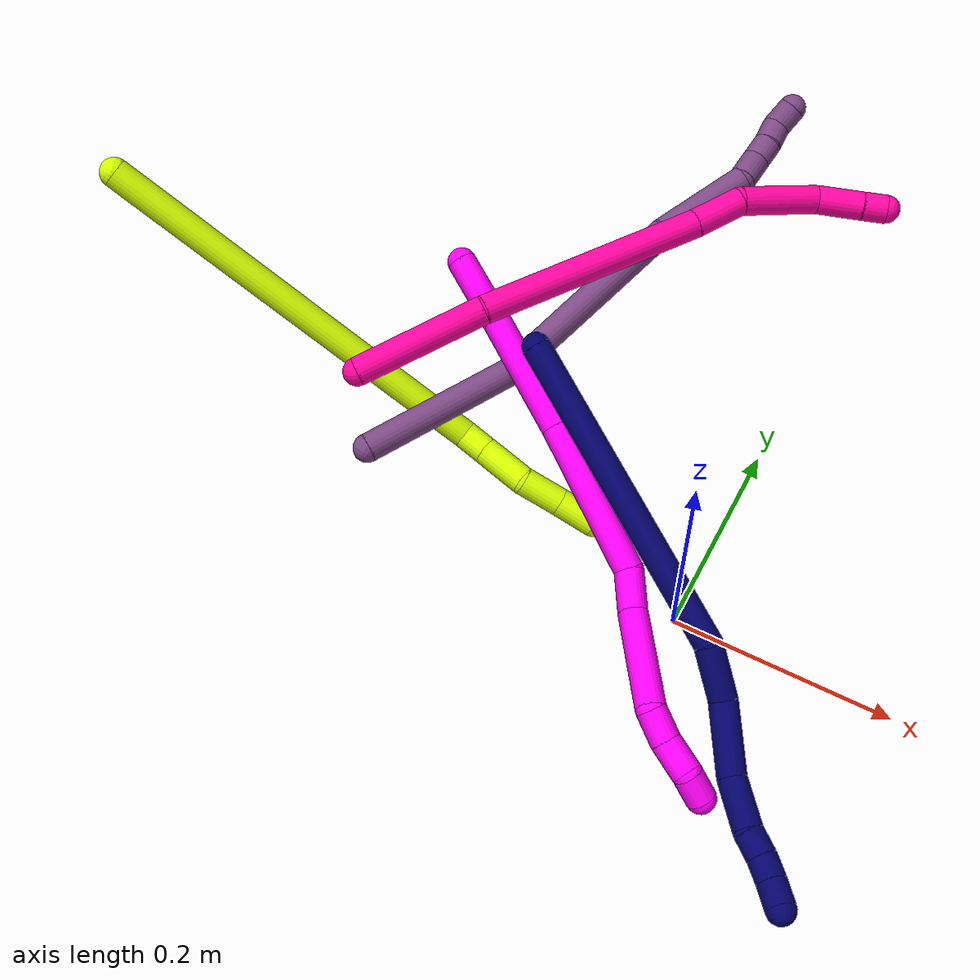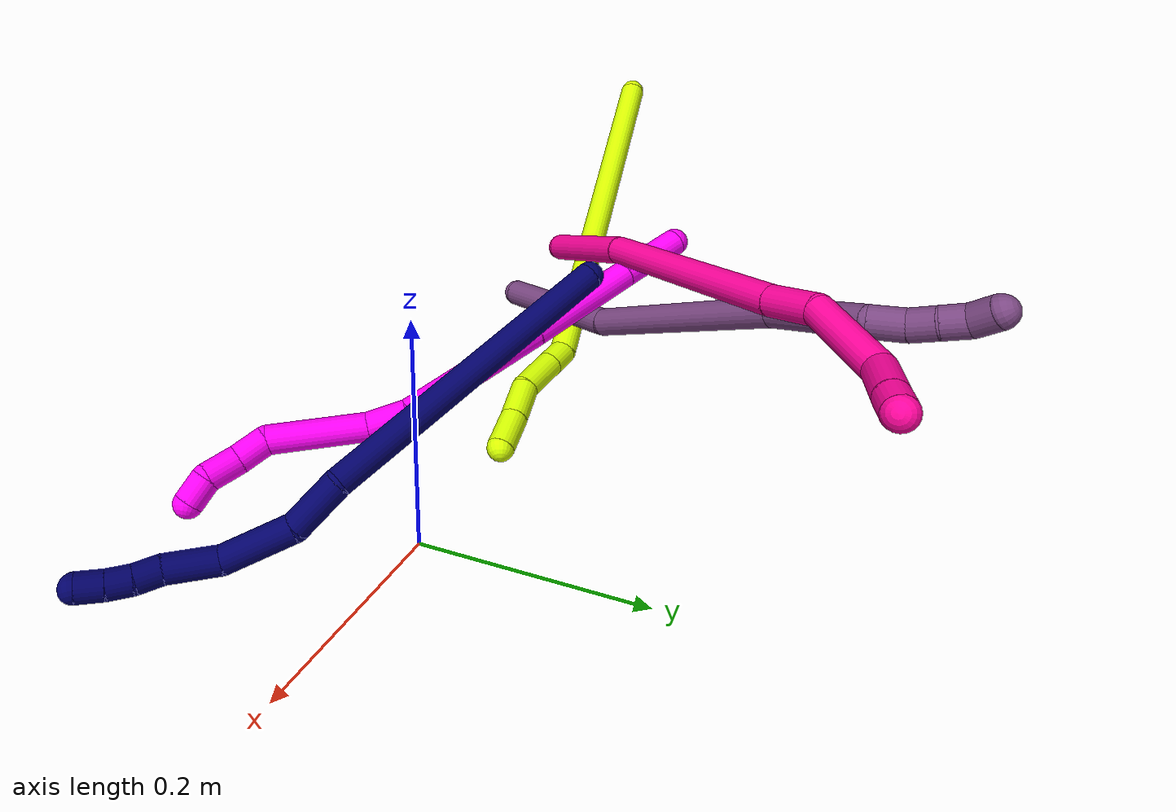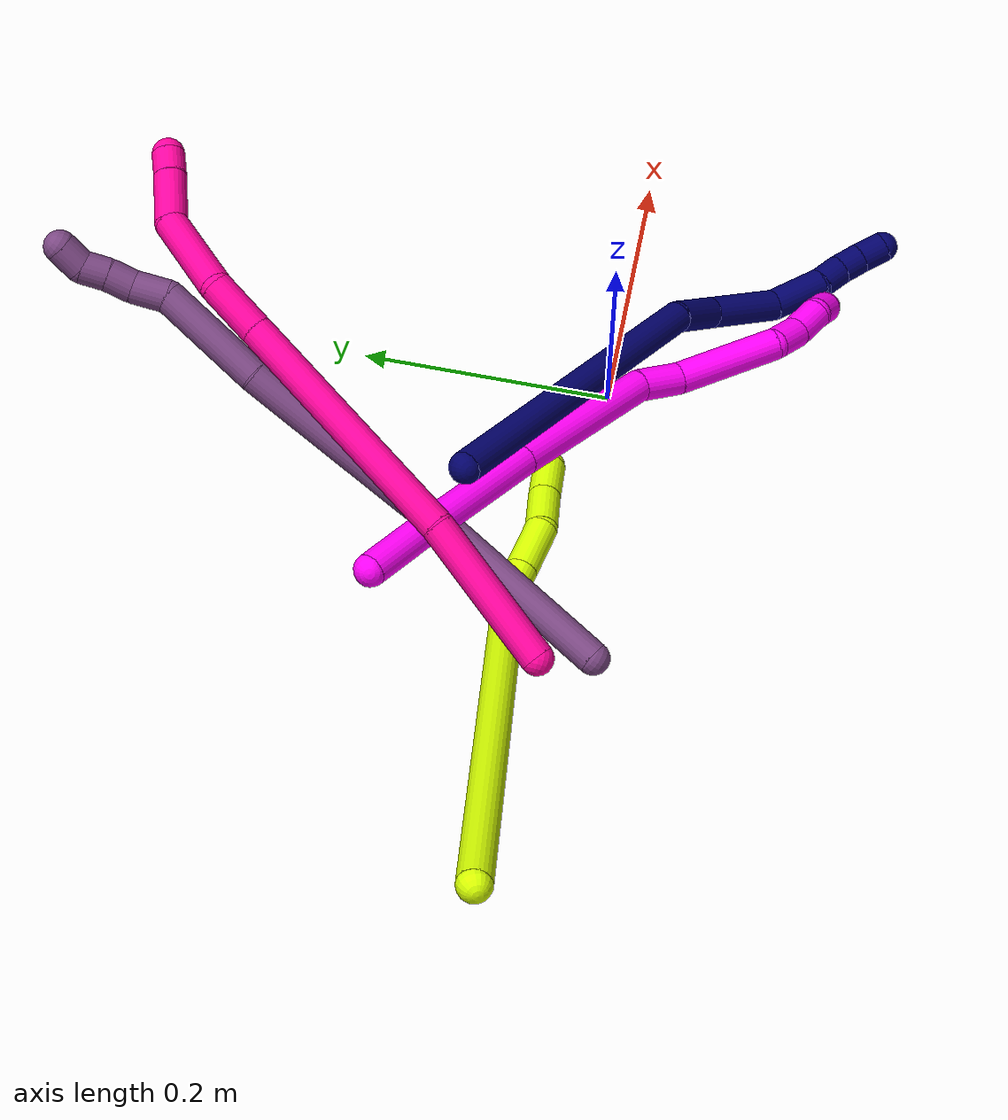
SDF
<sdf version="1.7">
 <world name="default">
  <model name="7">
   <static>0</static>
   <link name="7">
    <collision name="collision-cylinder-e_1_1_4">
     <pose>0.01287 -0.118824 0.073561 1.01647 0.091831 0.051178</pose>
     <geometry><cylinder><radius>0.0125</radius><length>0.280685</length></cylinder></geometry>
     <surface>
      <friction><ode><mu>1.16</mu><mu2>1.16</mu2><slip1>0</slip1><slip2>0</slip2></ode></friction>
      <contact><ode><kp>1e+06</kp><kd>1</kd><max_vel>0</max_vel><min_depth>0.001</min_depth></ode></contact>
     </surface>
    </collision>
    <visual name="visual-cylinder-e_1_1_4">
     <pose>0.01287 -0.118824 0.073561 1.01647 0.091831 0.051178</pose>
     <geometry><cylinder><radius>0.0125</radius><length>0.280685</length></cylinder></geometry>
     <material><ambient>0.003922 0 0.403922 1</ambient></material>
    </visual>
    <collision name="collision-cylinder-e_2_4_5">
     <pose>0.035381 -0.25542 0.160101 0.94003 0.412936 0.212</pose>
     <geometry><cylinder><radius>0.0125</radius><length>0.048052</length></cylinder></geometry>
     <surface>
      <friction><ode><mu>1.16</mu><mu2>1.16</mu2><slip1>0</slip1><slip2>0</slip2></ode></friction>
      <contact><ode><kp>1e+06</kp><kd>1</kd><max_vel>0</max_vel><min_depth>0.001</min_depth></ode></contact>
     </surface>
    </collision>
    <visual name="visual-cylinder-e_2_4_5">
     <pose>0.035381 -0.25542 0.160101 0.94003 0.412936 0.212</pose>
     <geometry><cylinder><radius>0.0125</radius><length>0.048052</length></cylinder></geometry>
     <material><ambient>0.003922 0 0.403922 1</ambient></material>
    </visual>
    <collision name="collision-cylinder-e_3_5_6">
     <pose>0.056915 -0.301586 0.179109 1.36157 0.388843 0.316312</pose>
     <geometry><cylinder><radius>0.0125</radius><length>0.062738</length></cylinder></geometry>
     <surface>
      <friction><ode><mu>1.16</mu><mu2>1.16</mu2><slip1>0</slip1><slip2>0</slip2></ode></friction>
      <contact><ode><kp>1e+06</kp><kd>1</kd><max_vel>0</max_vel><min_depth>0.001</min_depth></ode></contact>
     </surface>
    </collision>
    <visual name="visual-cylinder-e_3_5_6">
     <pose>0.056915 -0.301586 0.179109 1.36157 0.388843 0.316312</pose>
     <geometry><cylinder><radius>0.0125</radius><length>0.062738</length></cylinder></geometry>
     <material><ambient>0.003922 0 0.403922 1</ambient></material>
    </visual>
    <collision name="collision-cylinder-e_4_6_7">
     <pose>0.069846 -0.352384 0.185034 1.57545 0.046318 0.046534</pose>
     <geometry><cylinder><radius>0.0125</radius><length>0.044856</length></cylinder></geometry>
     <surface>
      <friction><ode><mu>1.16</mu><mu2>1.16</mu2><slip1>0</slip1><slip2>0</slip2></ode></friction>
      <contact><ode><kp>1e+06</kp><kd>1</kd><max_vel>0</max_vel><min_depth>0.001</min_depth></ode></contact>
     </surface>
    </collision>
    <visual name="visual-cylinder-e_4_6_7">
     <pose>0.069846 -0.352384 0.185034 1.57545 0.046318 0.046534</pose>
     <geometry><cylinder><radius>0.0125</radius><length>0.044856</length></cylinder></geometry>
     <material><ambient>0.003922 0 0.403922 1</ambient></material>
    </visual>
    <collision name="collision-cylinder-e_5_7_8">
     <pose>0.070349 -0.385322 0.187225 1.35625 -0.049693 -0.040034</pose>
     <geometry><cylinder><radius>0.0125</radius><length>0.021589</length></cylinder></geometry>
     <surface>
      <friction><ode><mu>1.16</mu><mu2>1.16</mu2><slip1>0</slip1><slip2>0</slip2></ode></friction>
      <contact><ode><kp>1e+06</kp><kd>1</kd><max_vel>0</max_vel><min_depth>0.001</min_depth></ode></contact>
     </surface>
    </collision>
    <visual name="visual-cylinder-e_5_7_8">
     <pose>0.070349 -0.385322 0.187225 1.35625 -0.049693 -0.040034</pose>
     <geometry><cylinder><radius>0.0125</radius><length>0.021589</length></cylinder></geometry>
     <material><ambient>0.003922 0 0.403922 1</ambient></material>
    </visual>
    <collision name="collision-cylinder-e_6_8_9">
     <pose>0.069679 -0.40592 0.189979 1.52524 -0.01323 -0.012641</pose>
     <geometry><cylinder><radius>0.0125</radius><length>0.020151</length></cylinder></geometry>
     <surface>
      <friction><ode><mu>1.16</mu><mu2>1.16</mu2><slip1>0</slip1><slip2>0</slip2></ode></friction>
      <contact><ode><kp>1e+06</kp><kd>1</kd><max_vel>0</max_vel><min_depth>0.001</min_depth></ode></contact>
     </surface>
    </collision>
    <visual name="visual-cylinder-e_6_8_9">
     <pose>0.069679 -0.40592 0.189979 1.52524 -0.01323 -0.012641</pose>
     <geometry><cylinder><radius>0.0125</radius><length>0.020151</length></cylinder></geometry>
     <material><ambient>0.003922 0 0.403922 1</ambient></material>
    </visual>
    <collision name="collision-cylinder-e_7_9_2">
     <pose>0.069451 -0.42693 0.189807 1.62842 -0.008611 -0.009123</pose>
     <geometry><cylinder><radius>0.0125</radius><length>0.021929</length></cylinder></geometry>
     <surface>
      <friction><ode><mu>1.16</mu><mu2>1.16</mu2><slip1>0</slip1><slip2>0</slip2></ode></friction>
      <contact><ode><kp>1e+06</kp><kd>1</kd><max_vel>0</max_vel><min_depth>0.001</min_depth></ode></contact>
     </surface>
    </collision>
    <visual name="visual-cylinder-e_7_9_2">
     <pose>0.069451 -0.42693 0.189807 1.62842 -0.008611 -0.009123</pose>
     <geometry><cylinder><radius>0.0125</radius><length>0.021929</length></cylinder></geometry>
     <material><ambient>0.003922 0 0.403922 1</ambient></material>
    </visual>
    <collision name="collision-sphere-2">
     <pose>0.069357 -0.437876 0.189175 0 -0 0</pose>
     <geometry><sphere><radius>0.0125</radius></sphere></geometry>
     <surface>
      <friction><ode><mu>1.16</mu><mu2>1.16</mu2><slip1>0</slip1><slip2>0</slip2></ode></friction>
      <contact><ode><kp>1e+06</kp><kd>1</kd><max_vel>0</max_vel><min_depth>0.001</min_depth></ode></contact>
     </surface>
    </collision>
    <visual name="visual-sphere-2">
     <pose>0.069357 -0.437876 0.189175 0 -0 0</pose>
     <geometry><sphere><radius>0.0125</radius></sphere></geometry>
     <material><ambient>0.003922 0 0.403922 1</ambient></material>
    </visual>
    <collision name="collision-sphere-9">
     <pose>0.069546 -0.415984 0.190438 0 -0 0</pose>
     <geometry><sphere><radius>0.0125</radius></sphere></geometry>
     <surface>
      <friction><ode><mu>1.16</mu><mu2>1.16</mu2><slip1>0</slip1><slip2>0</slip2></ode></friction>
      <contact><ode><kp>1e+06</kp><kd>1</kd><max_vel>0</max_vel><min_depth>0.001</min_depth></ode></contact>
     </surface>
    </collision>
    <visual name="visual-sphere-9">
     <pose>0.069546 -0.415984 0.190438 0 -0 0</pose>
     <geometry><sphere><radius>0.0125</radius></sphere></geometry>
     <material><ambient>0.003922 0 0.403922 1</ambient></material>
    </visual>
    <collision name="collision-sphere-4">
     <pose>0.025739 -0.237648 0.147123 0 -0 0</pose>
     <geometry><sphere><radius>0.0125</radius></sphere></geometry>
     <surface>
      <friction><ode><mu>1.16</mu><mu2>1.16</mu2><slip1>0</slip1><slip2>0</slip2></ode></friction>
      <contact><ode><kp>1e+06</kp><kd>1</kd><max_vel>0</max_vel><min_depth>0.001</min_depth></ode></contact>
     </surface>
    </collision>
    <visual name="visual-sphere-4">
     <pose>0.025739 -0.237648 0.147123 0 -0 0</pose>
     <geometry><sphere><radius>0.0125</radius></sphere></geometry>
     <material><ambient>0.003922 0 0.403922 1</ambient></material>
    </visual>
    <collision name="collision-sphere-1">
     <geometry><sphere><radius>0.0125</radius></sphere></geometry>
     <surface>
      <friction><ode><mu>1.16</mu><mu2>1.16</mu2><slip1>0</slip1><slip2>0</slip2></ode></friction>
      <contact><ode><kp>1e+06</kp><kd>1</kd><max_vel>0</max_vel><min_depth>0.001</min_depth></ode></contact>
     </surface>
    </collision>
    <visual name="visual-sphere-1">
     <geometry><sphere><radius>0.0125</radius></sphere></geometry>
     <material><ambient>0.003922 0 0.403922 1</ambient></material>
    </visual>
    <collision name="collision-sphere-8">
     <pose>0.069812 -0.395856 0.18952 0 -0 0</pose>
     <geometry><sphere><radius>0.0125</radius></sphere></geometry>
     <surface>
      <friction><ode><mu>1.16</mu><mu2>1.16</mu2><slip1>0</slip1><slip2>0</slip2></ode></friction>
      <contact><ode><kp>1e+06</kp><kd>1</kd><max_vel>0</max_vel><min_depth>0.001</min_depth></ode></contact>
     </surface>
    </collision>
    <visual name="visual-sphere-8">
     <pose>0.069812 -0.395856 0.18952 0 -0 0</pose>
     <geometry><sphere><radius>0.0125</radius></sphere></geometry>
     <material><ambient>0.003922 0 0.403922 1</ambient></material>
    </visual>
    <collision name="collision-sphere-5">
     <pose>0.045023 -0.273192 0.17308 0 -0 0</pose>
     <geometry><sphere><radius>0.0125</radius></sphere></geometry>
     <surface>
      <friction><ode><mu>1.16</mu><mu2>1.16</mu2><slip1>0</slip1><slip2>0</slip2></ode></friction>
      <contact><ode><kp>1e+06</kp><kd>1</kd><max_vel>0</max_vel><min_depth>0.001</min_depth></ode></contact>
     </surface>
    </collision>
    <visual name="visual-sphere-5">
     <pose>0.045023 -0.273192 0.17308 0 -0 0</pose>
     <geometry><sphere><radius>0.0125</radius></sphere></geometry>
     <material><ambient>0.003922 0 0.403922 1</ambient></material>
    </visual>
    <collision name="collision-sphere-6">
     <pose>0.068808 -0.32998 0.185138 0 -0 0</pose>
     <geometry><sphere><radius>0.0125</radius></sphere></geometry>
     <surface>
      <friction><ode><mu>1.16</mu><mu2>1.16</mu2><slip1>0</slip1><slip2>0</slip2></ode></friction>
      <contact><ode><kp>1e+06</kp><kd>1</kd><max_vel>0</max_vel><min_depth>0.001</min_depth></ode></contact>
     </surface>
    </collision>
    <visual name="visual-sphere-6">
     <pose>0.068808 -0.32998 0.185138 0 -0 0</pose>
     <geometry><sphere><radius>0.0125</radius></sphere></geometry>
     <material><ambient>0.003922 0 0.403922 1</ambient></material>
    </visual>
    <collision name="collision-sphere-7">
     <pose>0.070885 -0.374788 0.18493 0 -0 0</pose>
     <geometry><sphere><radius>0.0125</radius></sphere></geometry>
     <surface>
      <friction><ode><mu>1.16</mu><mu2>1.16</mu2><slip1>0</slip1><slip2>0</slip2></ode></friction>
      <contact><ode><kp>1e+06</kp><kd>1</kd><max_vel>0</max_vel><min_depth>0.001</min_depth></ode></contact>
     </surface>
    </collision>
    <visual name="visual-sphere-7">
     <pose>0.070885 -0.374788 0.18493 0 -0 0</pose>
     <geometry><sphere><radius>0.0125</radius></sphere></geometry>
     <material><ambient>0.003922 0 0.403922 1</ambient></material>
    </visual>
    <inertial>
     <pose>0.032924 -0.212427 0.11982 0 -0 0</pose>
     <mass>0.5</mass>
     <inertia>
      <ixx>0.001997</ixx>
      <ixy>0</ixy>
      <ixz>0</ixz>
      <iyy>0.001066</iyy>
      <iyz>0</iyz>
      <izz>0.001444</izz>
     </inertia>
    </inertial>
   </link>
   <pose>-0.177238 0.078231 0.191251 -3.12269 0.777666 -2.40669</pose>
  </model>
  <model name="10">
   <static>0</static>
   <link name="10">
    <collision name="collision-cylinder-e_1_1_4">
     <pose>0.020655 -0.008638 -0.022435 2.77408 0.709805 2.21191</pose>
     <geometry><cylinder><radius>0.0125</radius><length>0.06339</length></cylinder></geometry>
     <surface>
      <friction><ode><mu>1.16</mu><mu2>1.16</mu2><slip1>0</slip1><slip2>0</slip2></ode></friction>
      <contact><ode><kp>1e+06</kp><kd>1</kd><max_vel>0</max_vel><min_depth>0.001</min_depth></ode></contact>
     </surface>
    </collision>
    <visual name="visual-cylinder-e_1_1_4">
     <pose>0.020655 -0.008638 -0.022435 2.77408 0.709805 2.21191</pose>
     <geometry><cylinder><radius>0.0125</radius><length>0.06339</length></cylinder></geometry>
     <material><ambient>1 0 0.964706 1</ambient></material>
    </visual>
    <collision name="collision-cylinder-e_2_4_5">
     <pose>0.074682 -0.032588 -0.082372 2.75392 0.68911 2.14052</pose>
     <geometry><cylinder><radius>0.0125</radius><length>0.104966</length></cylinder></geometry>
     <surface>
      <friction><ode><mu>1.16</mu><mu2>1.16</mu2><slip1>0</slip1><slip2>0</slip2></ode></friction>
      <contact><ode><kp>1e+06</kp><kd>1</kd><max_vel>0</max_vel><min_depth>0.001</min_depth></ode></contact>
     </surface>
    </collision>
    <visual name="visual-cylinder-e_2_4_5">
     <pose>0.074682 -0.032588 -0.082372 2.75392 0.68911 2.14052</pose>
     <geometry><cylinder><radius>0.0125</radius><length>0.104966</length></cylinder></geometry>
     <material><ambient>1 0 0.964706 1</ambient></material>
    </visual>
    <collision name="collision-cylinder-e_3_5_6">
     <pose>0.150144 -0.069731 -0.166978 2.70764 0.681243 2.02876</pose>
     <geometry><cylinder><radius>0.0125</radius><length>0.133672</length></cylinder></geometry>
     <surface>
      <friction><ode><mu>1.16</mu><mu2>1.16</mu2><slip1>0</slip1><slip2>0</slip2></ode></friction>
      <contact><ode><kp>1e+06</kp><kd>1</kd><max_vel>0</max_vel><min_depth>0.001</min_depth></ode></contact>
     </surface>
    </collision>
    <visual name="visual-cylinder-e_3_5_6">
     <pose>0.150144 -0.069731 -0.166978 2.70764 0.681243 2.02876</pose>
     <geometry><cylinder><radius>0.0125</radius><length>0.133672</length></cylinder></geometry>
     <material><ambient>1 0 0.964706 1</ambient></material>
    </visual>
    <collision name="collision-cylinder-e_4_6_7">
     <pose>0.203121 -0.102678 -0.222 2.18958 0.673268 1.19271</pose>
     <geometry><cylinder><radius>0.0125</radius><length>0.034917</length></cylinder></geometry>
     <surface>
      <friction><ode><mu>1.16</mu><mu2>1.16</mu2><slip1>0</slip1><slip2>0</slip2></ode></friction>
      <contact><ode><kp>1e+06</kp><kd>1</kd><max_vel>0</max_vel><min_depth>0.001</min_depth></ode></contact>
     </surface>
    </collision>
    <visual name="visual-cylinder-e_4_6_7">
     <pose>0.203121 -0.102678 -0.222 2.18958 0.673268 1.19271</pose>
     <geometry><cylinder><radius>0.0125</radius><length>0.034917</length></cylinder></geometry>
     <material><ambient>1 0 0.964706 1</ambient></material>
    </visual>
    <collision name="collision-cylinder-e_5_7_8">
     <pose>0.247174 -0.135611 -0.243202 2.11781 0.914582 1.4386</pose>
     <geometry><cylinder><radius>0.0125</radius><length>0.083724</length></cylinder></geometry>
     <surface>
      <friction><ode><mu>1.16</mu><mu2>1.16</mu2><slip1>0</slip1><slip2>0</slip2></ode></friction>
      <contact><ode><kp>1e+06</kp><kd>1</kd><max_vel>0</max_vel><min_depth>0.001</min_depth></ode></contact>
     </surface>
    </collision>
    <visual name="visual-cylinder-e_5_7_8">
     <pose>0.247174 -0.135611 -0.243202 2.11781 0.914582 1.4386</pose>
     <geometry><cylinder><radius>0.0125</radius><length>0.083724</length></cylinder></geometry>
     <material><ambient>1 0 0.964706 1</ambient></material>
    </visual>
    <collision name="collision-cylinder-e_6_8_9">
     <pose>0.287973 -0.162313 -0.26641 2.68387 0.603906 1.85733</pose>
     <geometry><cylinder><radius>0.0125</radius><length>0.026877</length></cylinder></geometry>
     <surface>
      <friction><ode><mu>1.16</mu><mu2>1.16</mu2><slip1>0</slip1><slip2>0</slip2></ode></friction>
      <contact><ode><kp>1e+06</kp><kd>1</kd><max_vel>0</max_vel><min_depth>0.001</min_depth></ode></contact>
     </surface>
    </collision>
    <visual name="visual-cylinder-e_6_8_9">
     <pose>0.287973 -0.162313 -0.26641 2.68387 0.603906 1.85733</pose>
     <geometry><cylinder><radius>0.0125</radius><length>0.026877</length></cylinder></geometry>
     <material><ambient>1 0 0.964706 1</ambient></material>
    </visual>
    <collision name="collision-cylinder-e_7_9_10">
     <pose>0.305552 -0.170139 -0.286316 2.85536 0.762809 2.4517</pose>
     <geometry><cylinder><radius>0.0125</radius><length>0.028792</length></cylinder></geometry>
     <surface>
      <friction><ode><mu>1.16</mu><mu2>1.16</mu2><slip1>0</slip1><slip2>0</slip2></ode></friction>
      <contact><ode><kp>1e+06</kp><kd>1</kd><max_vel>0</max_vel><min_depth>0.001</min_depth></ode></contact>
     </surface>
    </collision>
    <visual name="visual-cylinder-e_7_9_10">
     <pose>0.305552 -0.170139 -0.286316 2.85536 0.762809 2.4517</pose>
     <geometry><cylinder><radius>0.0125</radius><length>0.028792</length></cylinder></geometry>
     <material><ambient>1 0 0.964706 1</ambient></material>
    </visual>
    <collision name="collision-cylinder-e_8_10_2">
     <pose>0.318715 -0.176388 -0.307193 2.84656 0.275324 1.50079</pose>
     <geometry><cylinder><radius>0.0125</radius><length>0.02366</length></cylinder></geometry>
     <surface>
      <friction><ode><mu>1.16</mu><mu2>1.16</mu2><slip1>0</slip1><slip2>0</slip2></ode></friction>
      <contact><ode><kp>1e+06</kp><kd>1</kd><max_vel>0</max_vel><min_depth>0.001</min_depth></ode></contact>
     </surface>
    </collision>
    <visual name="visual-cylinder-e_8_10_2">
     <pose>0.318715 -0.176388 -0.307193 2.84656 0.275324 1.50079</pose>
     <geometry><cylinder><radius>0.0125</radius><length>0.02366</length></cylinder></geometry>
     <material><ambient>1 0 0.964706 1</ambient></material>
    </visual>
    <collision name="collision-sphere-2">
     <pose>0.321931 -0.179698 -0.318085 0 -0 0</pose>
     <geometry><sphere><radius>0.0125</radius></sphere></geometry>
     <surface>
      <friction><ode><mu>1.16</mu><mu2>1.16</mu2><slip1>0</slip1><slip2>0</slip2></ode></friction>
      <contact><ode><kp>1e+06</kp><kd>1</kd><max_vel>0</max_vel><min_depth>0.001</min_depth></ode></contact>
     </surface>
    </collision>
    <visual name="visual-sphere-2">
     <pose>0.321931 -0.179698 -0.318085 0 -0 0</pose>
     <geometry><sphere><radius>0.0125</radius></sphere></geometry>
     <material><ambient>1 0 0.964706 1</ambient></material>
    </visual>
    <collision name="collision-sphere-10">
     <pose>0.315499 -0.173078 -0.2963 0 -0 0</pose>
     <geometry><sphere><radius>0.0125</radius></sphere></geometry>
     <surface>
      <friction><ode><mu>1.16</mu><mu2>1.16</mu2><slip1>0</slip1><slip2>0</slip2></ode></friction>
      <contact><ode><kp>1e+06</kp><kd>1</kd><max_vel>0</max_vel><min_depth>0.001</min_depth></ode></contact>
     </surface>
    </collision>
    <visual name="visual-sphere-10">
     <pose>0.315499 -0.173078 -0.2963 0 -0 0</pose>
     <geometry><sphere><radius>0.0125</radius></sphere></geometry>
     <material><ambient>1 0 0.964706 1</ambient></material>
    </visual>
    <collision name="collision-sphere-9">
     <pose>0.295605 -0.167201 -0.276333 0 -0 0</pose>
     <geometry><sphere><radius>0.0125</radius></sphere></geometry>
     <surface>
      <friction><ode><mu>1.16</mu><mu2>1.16</mu2><slip1>0</slip1><slip2>0</slip2></ode></friction>
      <contact><ode><kp>1e+06</kp><kd>1</kd><max_vel>0</max_vel><min_depth>0.001</min_depth></ode></contact>
     </surface>
    </collision>
    <visual name="visual-sphere-9">
     <pose>0.295605 -0.167201 -0.276333 0 -0 0</pose>
     <geometry><sphere><radius>0.0125</radius></sphere></geometry>
     <material><ambient>1 0 0.964706 1</ambient></material>
    </visual>
    <collision name="collision-sphere-4">
     <pose>0.041311 -0.017275 -0.04487 0 -0 0</pose>
     <geometry><sphere><radius>0.0125</radius></sphere></geometry>
     <surface>
      <friction><ode><mu>1.16</mu><mu2>1.16</mu2><slip1>0</slip1><slip2>0</slip2></ode></friction>
      <contact><ode><kp>1e+06</kp><kd>1</kd><max_vel>0</max_vel><min_depth>0.001</min_depth></ode></contact>
     </surface>
    </collision>
    <visual name="visual-sphere-4">
     <pose>0.041311 -0.017275 -0.04487 0 -0 0</pose>
     <geometry><sphere><radius>0.0125</radius></sphere></geometry>
     <material><ambient>1 0 0.964706 1</ambient></material>
    </visual>
    <collision name="collision-sphere-1">
     <geometry><sphere><radius>0.0125</radius></sphere></geometry>
     <surface>
      <friction><ode><mu>1.16</mu><mu2>1.16</mu2><slip1>0</slip1><slip2>0</slip2></ode></friction>
      <contact><ode><kp>1e+06</kp><kd>1</kd><max_vel>0</max_vel><min_depth>0.001</min_depth></ode></contact>
     </surface>
    </collision>
    <visual name="visual-sphere-1">
     <geometry><sphere><radius>0.0125</radius></sphere></geometry>
     <material><ambient>1 0 0.964706 1</ambient></material>
    </visual>
    <collision name="collision-sphere-8">
     <pose>0.280342 -0.157425 -0.256487 0 -0 0</pose>
     <geometry><sphere><radius>0.0125</radius></sphere></geometry>
     <surface>
      <friction><ode><mu>1.16</mu><mu2>1.16</mu2><slip1>0</slip1><slip2>0</slip2></ode></friction>
      <contact><ode><kp>1e+06</kp><kd>1</kd><max_vel>0</max_vel><min_depth>0.001</min_depth></ode></contact>
     </surface>
    </collision>
    <visual name="visual-sphere-8">
     <pose>0.280342 -0.157425 -0.256487 0 -0 0</pose>
     <geometry><sphere><radius>0.0125</radius></sphere></geometry>
     <material><ambient>1 0 0.964706 1</ambient></material>
    </visual>
    <collision name="collision-sphere-5">
     <pose>0.108054 -0.047901 -0.119873 0 -0 0</pose>
     <geometry><sphere><radius>0.0125</radius></sphere></geometry>
     <surface>
      <friction><ode><mu>1.16</mu><mu2>1.16</mu2><slip1>0</slip1><slip2>0</slip2></ode></friction>
      <contact><ode><kp>1e+06</kp><kd>1</kd><max_vel>0</max_vel><min_depth>0.001</min_depth></ode></contact>
     </surface>
    </collision>
    <visual name="visual-sphere-5">
     <pose>0.108054 -0.047901 -0.119873 0 -0 0</pose>
     <geometry><sphere><radius>0.0125</radius></sphere></geometry>
     <material><ambient>1 0 0.964706 1</ambient></material>
    </visual>
    <collision name="collision-sphere-6">
     <pose>0.192235 -0.09156 -0.214083 0 -0 0</pose>
     <geometry><sphere><radius>0.0125</radius></sphere></geometry>
     <surface>
      <friction><ode><mu>1.16</mu><mu2>1.16</mu2><slip1>0</slip1><slip2>0</slip2></ode></friction>
      <contact><ode><kp>1e+06</kp><kd>1</kd><max_vel>0</max_vel><min_depth>0.001</min_depth></ode></contact>
     </surface>
    </collision>
    <visual name="visual-sphere-6">
     <pose>0.192235 -0.09156 -0.214083 0 -0 0</pose>
     <geometry><sphere><radius>0.0125</radius></sphere></geometry>
     <material><ambient>1 0 0.964706 1</ambient></material>
    </visual>
    <collision name="collision-sphere-7">
     <pose>0.214007 -0.113797 -0.229917 0 -0 0</pose>
     <geometry><sphere><radius>0.0125</radius></sphere></geometry>
     <surface>
      <friction><ode><mu>1.16</mu><mu2>1.16</mu2><slip1>0</slip1><slip2>0</slip2></ode></friction>
      <contact><ode><kp>1e+06</kp><kd>1</kd><max_vel>0</max_vel><min_depth>0.001</min_depth></ode></contact>
     </surface>
    </collision>
    <visual name="visual-sphere-7">
     <pose>0.214007 -0.113797 -0.229917 0 -0 0</pose>
     <geometry><sphere><radius>0.0125</radius></sphere></geometry>
     <material><ambient>1 0 0.964706 1</ambient></material>
    </visual>
    <inertial>
     <pose>0.162168 -0.083326 -0.166349 0 -0 0</pose>
     <mass>0.5</mass>
     <inertia>
      <ixx>0.000168</ixx>
      <ixy>0</ixy>
      <ixz>0</ixz>
      <iyy>0.000504</iyy>
      <iyz>0</iyz>
      <izz>-0.000146</izz>
     </inertia>
    </inertial>
   </link>
   <pose>-0.274471 0.126554 0.200911 0.497402 -0.530388 -0.651429</pose>
  </model>
  <model name="15">
   <static>0</static>
   <link name="15">
    <collision name="collision-cylinder-e_1_1_4">
     <pose>0.032826 -0.035331 -0.173812 2.94106 0.183005 1.47888</pose>
     <geometry><cylinder><radius>0.0125</radius><length>0.360758</length></cylinder></geometry>
     <surface>
      <friction><ode><mu>1.16</mu><mu2>1.16</mu2><slip1>0</slip1><slip2>0</slip2></ode></friction>
      <contact><ode><kp>1e+06</kp><kd>1</kd><max_vel>0</max_vel><min_depth>0.001</min_depth></ode></contact>
     </surface>
    </collision>
    <visual name="visual-cylinder-e_1_1_4">
     <pose>0.032826 -0.035331 -0.173812 2.94106 0.183005 1.47888</pose>
     <geometry><cylinder><radius>0.0125</radius><length>0.360758</length></cylinder></geometry>
     <material><ambient>0.835294 1 0 1</ambient></material>
    </visual>
    <collision name="collision-cylinder-e_2_4_5">
     <pose>0.073011 -0.071521 -0.357124 3.05132 0.657136 2.87816</pose>
     <geometry><cylinder><radius>0.0125</radius><length>0.024093</length></cylinder></geometry>
     <surface>
      <friction><ode><mu>1.16</mu><mu2>1.16</mu2><slip1>0</slip1><slip2>0</slip2></ode></friction>
      <contact><ode><kp>1e+06</kp><kd>1</kd><max_vel>0</max_vel><min_depth>0.001</min_depth></ode></contact>
     </surface>
    </collision>
    <visual name="visual-cylinder-e_2_4_5">
     <pose>0.073011 -0.071521 -0.357124 3.05132 0.657136 2.87816</pose>
     <geometry><cylinder><radius>0.0125</radius><length>0.024093</length></cylinder></geometry>
     <material><ambient>0.835294 1 0 1</ambient></material>
    </visual>
    <collision name="collision-cylinder-e_3_5_6">
     <pose>0.093435 -0.073909 -0.383441 3.05097 0.658478 2.87773</pose>
     <geometry><cylinder><radius>0.0125</radius><length>0.042704</length></cylinder></geometry>
     <surface>
      <friction><ode><mu>1.16</mu><mu2>1.16</mu2><slip1>0</slip1><slip2>0</slip2></ode></friction>
      <contact><ode><kp>1e+06</kp><kd>1</kd><max_vel>0</max_vel><min_depth>0.001</min_depth></ode></contact>
     </surface>
    </collision>
    <visual name="visual-cylinder-e_3_5_6">
     <pose>0.093435 -0.073909 -0.383441 3.05097 0.658478 2.87773</pose>
     <geometry><cylinder><radius>0.0125</radius><length>0.042704</length></cylinder></geometry>
     <material><ambient>0.835294 1 0 1</ambient></material>
    </visual>
    <collision name="collision-cylinder-e_4_6_7">
     <pose>0.112131 -0.076189 -0.417794 3.09876 0.310448 2.86954</pose>
     <geometry><cylinder><radius>0.0125</radius><length>0.036863</length></cylinder></geometry>
     <surface>
      <friction><ode><mu>1.16</mu><mu2>1.16</mu2><slip1>0</slip1><slip2>0</slip2></ode></friction>
      <contact><ode><kp>1e+06</kp><kd>1</kd><max_vel>0</max_vel><min_depth>0.001</min_depth></ode></contact>
     </surface>
    </collision>
    <visual name="visual-cylinder-e_4_6_7">
     <pose>0.112131 -0.076189 -0.417794 3.09876 0.310448 2.86954</pose>
     <geometry><cylinder><radius>0.0125</radius><length>0.036863</length></cylinder></geometry>
     <material><ambient>0.835294 1 0 1</ambient></material>
    </visual>
    <collision name="collision-cylinder-e_5_7_2">
     <pose>0.124059 -0.077791 -0.451946 3.09047 0.361813 2.8638</pose>
     <geometry><cylinder><radius>0.0125</radius><length>0.035582</length></cylinder></geometry>
     <surface>
      <friction><ode><mu>1.16</mu><mu2>1.16</mu2><slip1>0</slip1><slip2>0</slip2></ode></friction>
      <contact><ode><kp>1e+06</kp><kd>1</kd><max_vel>0</max_vel><min_depth>0.001</min_depth></ode></contact>
     </surface>
    </collision>
    <visual name="visual-cylinder-e_5_7_2">
     <pose>0.124059 -0.077791 -0.451946 3.09047 0.361813 2.8638</pose>
     <geometry><cylinder><radius>0.0125</radius><length>0.035582</length></cylinder></geometry>
     <material><ambient>0.835294 1 0 1</ambient></material>
    </visual>
    <collision name="collision-sphere-2">
     <pose>0.130357 -0.078641 -0.468563 0 -0 0</pose>
     <geometry><sphere><radius>0.0125</radius></sphere></geometry>
     <surface>
      <friction><ode><mu>1.16</mu><mu2>1.16</mu2><slip1>0</slip1><slip2>0</slip2></ode></friction>
      <contact><ode><kp>1e+06</kp><kd>1</kd><max_vel>0</max_vel><min_depth>0.001</min_depth></ode></contact>
     </surface>
    </collision>
    <visual name="visual-sphere-2">
     <pose>0.130357 -0.078641 -0.468563 0 -0 0</pose>
     <geometry><sphere><radius>0.0125</radius></sphere></geometry>
     <material><ambient>0.835294 1 0 1</ambient></material>
    </visual>
    <collision name="collision-sphere-7">
     <pose>0.117762 -0.07694 -0.435328 0 -0 0</pose>
     <geometry><sphere><radius>0.0125</radius></sphere></geometry>
     <surface>
      <friction><ode><mu>1.16</mu><mu2>1.16</mu2><slip1>0</slip1><slip2>0</slip2></ode></friction>
      <contact><ode><kp>1e+06</kp><kd>1</kd><max_vel>0</max_vel><min_depth>0.001</min_depth></ode></contact>
     </surface>
    </collision>
    <visual name="visual-sphere-7">
     <pose>0.117762 -0.07694 -0.435328 0 -0 0</pose>
     <geometry><sphere><radius>0.0125</radius></sphere></geometry>
     <material><ambient>0.835294 1 0 1</ambient></material>
    </visual>
    <collision name="collision-sphere-6">
     <pose>0.106501 -0.075437 -0.40026 0 -0 0</pose>
     <geometry><sphere><radius>0.0125</radius></sphere></geometry>
     <surface>
      <friction><ode><mu>1.16</mu><mu2>1.16</mu2><slip1>0</slip1><slip2>0</slip2></ode></friction>
      <contact><ode><kp>1e+06</kp><kd>1</kd><max_vel>0</max_vel><min_depth>0.001</min_depth></ode></contact>
     </surface>
    </collision>
    <visual name="visual-sphere-6">
     <pose>0.106501 -0.075437 -0.40026 0 -0 0</pose>
     <geometry><sphere><radius>0.0125</radius></sphere></geometry>
     <material><ambient>0.835294 1 0 1</ambient></material>
    </visual>
    <collision name="collision-sphere-5">
     <pose>0.08037 -0.072381 -0.366623 0 -0 0</pose>
     <geometry><sphere><radius>0.0125</radius></sphere></geometry>
     <surface>
      <friction><ode><mu>1.16</mu><mu2>1.16</mu2><slip1>0</slip1><slip2>0</slip2></ode></friction>
      <contact><ode><kp>1e+06</kp><kd>1</kd><max_vel>0</max_vel><min_depth>0.001</min_depth></ode></contact>
     </surface>
    </collision>
    <visual name="visual-sphere-5">
     <pose>0.08037 -0.072381 -0.366623 0 -0 0</pose>
     <geometry><sphere><radius>0.0125</radius></sphere></geometry>
     <material><ambient>0.835294 1 0 1</ambient></material>
    </visual>
    <collision name="collision-sphere-1">
     <geometry><sphere><radius>0.0125</radius></sphere></geometry>
     <surface>
      <friction><ode><mu>1.16</mu><mu2>1.16</mu2><slip1>0</slip1><slip2>0</slip2></ode></friction>
      <contact><ode><kp>1e+06</kp><kd>1</kd><max_vel>0</max_vel><min_depth>0.001</min_depth></ode></contact>
     </surface>
    </collision>
    <visual name="visual-sphere-1">
     <geometry><sphere><radius>0.0125</radius></sphere></geometry>
     <material><ambient>0.835294 1 0 1</ambient></material>
    </visual>
    <collision name="collision-sphere-4">
     <pose>0.065653 -0.070661 -0.347625 0 -0 0</pose>
     <geometry><sphere><radius>0.0125</radius></sphere></geometry>
     <surface>
      <friction><ode><mu>1.16</mu><mu2>1.16</mu2><slip1>0</slip1><slip2>0</slip2></ode></friction>
      <contact><ode><kp>1e+06</kp><kd>1</kd><max_vel>0</max_vel><min_depth>0.001</min_depth></ode></contact>
     </surface>
    </collision>
    <visual name="visual-sphere-4">
     <pose>0.065653 -0.070661 -0.347625 0 -0 0</pose>
     <geometry><sphere><radius>0.0125</radius></sphere></geometry>
     <material><ambient>0.835294 1 0 1</ambient></material>
    </visual>
    <inertial>
     <pose>0.052279 -0.046403 -0.23833 0 -0 0</pose>
     <mass>0.5</mass>
     <inertia><ixx>0.004197</ixx><ixy>0</ixy><ixz>0</ixz><iyy>0.003653</iyy><iyz>0</iyz><izz>9e-06</izz></inertia>
    </inertial>
   </link>
   <pose>-0.519143 0.00102 0.298424 0.955861 -0.435549 -0.846734</pose>
  </model>
  <model name="18">
   <static>0</static>
   <link name="18">
    <collision name="collision-cylinder-e_1_1_4">
     <pose>0.045298 0.006822 0.036988 -0.182376 0.877841 -0.085804</pose>
     <geometry><cylinder><radius>0.0125</radius><length>0.117755</length></cylinder></geometry>
     <surface>
      <friction><ode><mu>1.16</mu><mu2>1.16</mu2><slip1>0</slip1><slip2>0</slip2></ode></friction>
      <contact><ode><kp>1e+06</kp><kd>1</kd><max_vel>0</max_vel><min_depth>0.001</min_depth></ode></contact>
     </surface>
    </collision>
    <visual name="visual-cylinder-e_1_1_4">
     <pose>0.045298 0.006822 0.036988 -0.182376 0.877841 -0.085804</pose>
     <geometry><cylinder><radius>0.0125</radius><length>0.117755</length></cylinder></geometry>
     <material><ambient>1 0.007843 0.615686 1</ambient></material>
    </visual>
    <collision name="collision-cylinder-e_2_4_5">
     <pose>0.175412 0.011654 0.128086 0.03675 1.00262 0.020141</pose>
     <geometry><cylinder><radius>0.0125</radius><length>0.201251</length></cylinder></geometry>
     <surface>
      <friction><ode><mu>1.16</mu><mu2>1.16</mu2><slip1>0</slip1><slip2>0</slip2></ode></friction>
      <contact><ode><kp>1e+06</kp><kd>1</kd><max_vel>0</max_vel><min_depth>0.001</min_depth></ode></contact>
     </surface>
    </collision>
    <visual name="visual-cylinder-e_2_4_5">
     <pose>0.175412 0.011654 0.128086 0.03675 1.00262 0.020141</pose>
     <geometry><cylinder><radius>0.0125</radius><length>0.201251</length></cylinder></geometry>
     <material><ambient>1 0.007843 0.615686 1</ambient></material>
    </visual>
    <collision name="collision-cylinder-e_3_5_6">
     <pose>0.279163 0.011206 0.194558 -0.124062 0.988858 -0.066942</pose>
     <geometry><cylinder><radius>0.0125</radius><length>0.045331</length></cylinder></geometry>
     <surface>
      <friction><ode><mu>1.16</mu><mu2>1.16</mu2><slip1>0</slip1><slip2>0</slip2></ode></friction>
      <contact><ode><kp>1e+06</kp><kd>1</kd><max_vel>0</max_vel><min_depth>0.001</min_depth></ode></contact>
     </surface>
    </collision>
    <visual name="visual-cylinder-e_3_5_6">
     <pose>0.279163 0.011206 0.194558 -0.124062 0.988858 -0.066942</pose>
     <geometry><cylinder><radius>0.0125</radius><length>0.045331</length></cylinder></geometry>
     <material><ambient>1 0.007843 0.615686 1</ambient></material>
    </visual>
    <collision name="collision-cylinder-e_4_6_7">
     <pose>0.326129 -3.1e-05 0.227604 0.553394 0.856325 0.257781</pose>
     <geometry><cylinder><radius>0.0125</radius><length>0.074212</length></cylinder></geometry>
     <surface>
      <friction><ode><mu>1.16</mu><mu2>1.16</mu2><slip1>0</slip1><slip2>0</slip2></ode></friction>
      <contact><ode><kp>1e+06</kp><kd>1</kd><max_vel>0</max_vel><min_depth>0.001</min_depth></ode></contact>
     </surface>
    </collision>
    <visual name="visual-cylinder-e_4_6_7">
     <pose>0.326129 -3.1e-05 0.227604 0.553394 0.856325 0.257781</pose>
     <geometry><cylinder><radius>0.0125</radius><length>0.074212</length></cylinder></geometry>
     <material><ambient>1 0.007843 0.615686 1</ambient></material>
    </visual>
    <collision name="collision-cylinder-e_5_7_8">
     <pose>0.361801 -0.019111 0.266444 0.33411 0.378434 0.064564</pose>
     <geometry><cylinder><radius>0.0125</radius><length>0.041364</length></cylinder></geometry>
     <surface>
      <friction><ode><mu>1.16</mu><mu2>1.16</mu2><slip1>0</slip1><slip2>0</slip2></ode></friction>
      <contact><ode><kp>1e+06</kp><kd>1</kd><max_vel>0</max_vel><min_depth>0.001</min_depth></ode></contact>
     </surface>
    </collision>
    <visual name="visual-cylinder-e_5_7_8">
     <pose>0.361801 -0.019111 0.266444 0.33411 0.378434 0.064564</pose>
     <geometry><cylinder><radius>0.0125</radius><length>0.041364</length></cylinder></geometry>
     <material><ambient>1 0.007843 0.615686 1</ambient></material>
    </visual>
    <collision name="collision-cylinder-e_6_8_2">
     <pose>0.373691 -0.028674 0.293096 0.366454 0.436811 0.082209</pose>
     <geometry><cylinder><radius>0.0125</radius><length>0.020086</length></cylinder></geometry>
     <surface>
      <friction><ode><mu>1.16</mu><mu2>1.16</mu2><slip1>0</slip1><slip2>0</slip2></ode></friction>
      <contact><ode><kp>1e+06</kp><kd>1</kd><max_vel>0</max_vel><min_depth>0.001</min_depth></ode></contact>
     </surface>
    </collision>
    <visual name="visual-cylinder-e_6_8_2">
     <pose>0.373691 -0.028674 0.293096 0.366454 0.436811 0.082209</pose>
     <geometry><cylinder><radius>0.0125</radius><length>0.020086</length></cylinder></geometry>
     <material><ambient>1 0.007843 0.615686 1</ambient></material>
    </visual>
    <collision name="collision-sphere-2">
     <pose>0.37794 -0.031935 0.301591 0 -0 0</pose>
     <geometry><sphere><radius>0.0125</radius></sphere></geometry>
     <surface>
      <friction><ode><mu>1.16</mu><mu2>1.16</mu2><slip1>0</slip1><slip2>0</slip2></ode></friction>
      <contact><ode><kp>1e+06</kp><kd>1</kd><max_vel>0</max_vel><min_depth>0.001</min_depth></ode></contact>
     </surface>
    </collision>
    <visual name="visual-sphere-2">
     <pose>0.37794 -0.031935 0.301591 0 -0 0</pose>
     <geometry><sphere><radius>0.0125</radius></sphere></geometry>
     <material><ambient>1 0.007843 0.615686 1</ambient></material>
    </visual>
    <collision name="collision-sphere-4">
     <pose>0.090597 0.013643 0.073976 0 -0 0</pose>
     <geometry><sphere><radius>0.0125</radius></sphere></geometry>
     <surface>
      <friction><ode><mu>1.16</mu><mu2>1.16</mu2><slip1>0</slip1><slip2>0</slip2></ode></friction>
      <contact><ode><kp>1e+06</kp><kd>1</kd><max_vel>0</max_vel><min_depth>0.001</min_depth></ode></contact>
     </surface>
    </collision>
    <visual name="visual-sphere-4">
     <pose>0.090597 0.013643 0.073976 0 -0 0</pose>
     <geometry><sphere><radius>0.0125</radius></sphere></geometry>
     <material><ambient>1 0.007843 0.615686 1</ambient></material>
    </visual>
    <collision name="collision-sphere-1">
     <geometry><sphere><radius>0.0125</radius></sphere></geometry>
     <surface>
      <friction><ode><mu>1.16</mu><mu2>1.16</mu2><slip1>0</slip1><slip2>0</slip2></ode></friction>
      <contact><ode><kp>1e+06</kp><kd>1</kd><max_vel>0</max_vel><min_depth>0.001</min_depth></ode></contact>
     </surface>
    </collision>
    <visual name="visual-sphere-1">
     <geometry><sphere><radius>0.0125</radius></sphere></geometry>
     <material><ambient>1 0.007843 0.615686 1</ambient></material>
    </visual>
    <collision name="collision-sphere-8">
     <pose>0.369443 -0.025413 0.2846 0 -0 0</pose>
     <geometry><sphere><radius>0.0125</radius></sphere></geometry>
     <surface>
      <friction><ode><mu>1.16</mu><mu2>1.16</mu2><slip1>0</slip1><slip2>0</slip2></ode></friction>
      <contact><ode><kp>1e+06</kp><kd>1</kd><max_vel>0</max_vel><min_depth>0.001</min_depth></ode></contact>
     </surface>
    </collision>
    <visual name="visual-sphere-8">
     <pose>0.369443 -0.025413 0.2846 0 -0 0</pose>
     <geometry><sphere><radius>0.0125</radius></sphere></geometry>
     <material><ambient>1 0.007843 0.615686 1</ambient></material>
    </visual>
    <collision name="collision-sphere-5">
     <pose>0.260228 0.009664 0.182196 0 -0 0</pose>
     <geometry><sphere><radius>0.0125</radius></sphere></geometry>
     <surface>
      <friction><ode><mu>1.16</mu><mu2>1.16</mu2><slip1>0</slip1><slip2>0</slip2></ode></friction>
      <contact><ode><kp>1e+06</kp><kd>1</kd><max_vel>0</max_vel><min_depth>0.001</min_depth></ode></contact>
     </surface>
    </collision>
    <visual name="visual-sphere-5">
     <pose>0.260228 0.009664 0.182196 0 -0 0</pose>
     <geometry><sphere><radius>0.0125</radius></sphere></geometry>
     <material><ambient>1 0.007843 0.615686 1</ambient></material>
    </visual>
    <collision name="collision-sphere-6">
     <pose>0.298097 0.012748 0.206921 0 -0 0</pose>
     <geometry><sphere><radius>0.0125</radius></sphere></geometry>
     <surface>
      <friction><ode><mu>1.16</mu><mu2>1.16</mu2><slip1>0</slip1><slip2>0</slip2></ode></friction>
      <contact><ode><kp>1e+06</kp><kd>1</kd><max_vel>0</max_vel><min_depth>0.001</min_depth></ode></contact>
     </surface>
    </collision>
    <visual name="visual-sphere-6">
     <pose>0.298097 0.012748 0.206921 0 -0 0</pose>
     <geometry><sphere><radius>0.0125</radius></sphere></geometry>
     <material><ambient>1 0.007843 0.615686 1</ambient></material>
    </visual>
    <collision name="collision-sphere-7">
     <pose>0.35416 -0.012809 0.248288 0 -0 0</pose>
     <geometry><sphere><radius>0.0125</radius></sphere></geometry>
     <surface>
      <friction><ode><mu>1.16</mu><mu2>1.16</mu2><slip1>0</slip1><slip2>0</slip2></ode></friction>
      <contact><ode><kp>1e+06</kp><kd>1</kd><max_vel>0</max_vel><min_depth>0.001</min_depth></ode></contact>
     </surface>
    </collision>
    <visual name="visual-sphere-7">
     <pose>0.35416 -0.012809 0.248288 0 -0 0</pose>
     <geometry><sphere><radius>0.0125</radius></sphere></geometry>
     <material><ambient>1 0.007843 0.615686 1</ambient></material>
    </visual>
    <inertial>
     <pose>0.19993 0.004576 0.145504 0 -0 0</pose>
     <mass>0.5</mass>
     <inertia>
      <ixx>0.000532</ixx>
      <ixy>0</ixy>
      <ixz>0</ixz>
      <iyy>0.000882</iyy>
      <iyz>0</iyz>
      <izz>-0.000691</izz>
     </inertia>
    </inertial>
   </link>
   <pose>-0.305391 0.00039 0.170548 1.18005 0.120933 1.4545</pose>
  </model>
  <model name="20">
   <static>0</static>
   <link name="20">
    <collision name="collision-cylinder-e_1_1_4">
     <pose>0.026769 0.026373 0.059068 -0.419933 0.392357 -0.084653</pose>
     <geometry><cylinder><radius>0.0125</radius><length>0.140017</length></cylinder></geometry>
     <surface>
      <friction><ode><mu>1.16</mu><mu2>1.16</mu2><slip1>0</slip1><slip2>0</slip2></ode></friction>
      <contact><ode><kp>1e+06</kp><kd>1</kd><max_vel>0</max_vel><min_depth>0.001</min_depth></ode></contact>
     </surface>
    </collision>
    <visual name="visual-cylinder-e_1_1_4">
     <pose>0.026769 0.026373 0.059068 -0.419933 0.392357 -0.084653</pose>
     <geometry><cylinder><radius>0.0125</radius><length>0.140017</length></cylinder></geometry>
     <material><ambient>0.478431 0.278431 0.509804 1</ambient></material>
    </visual>
    <collision name="collision-cylinder-e_2_4_5">
     <pose>0.073962 0.070198 0.206633 -0.194692 0.222672 -0.021834</pose>
     <geometry><cylinder><radius>0.0125</radius><length>0.18497</length></cylinder></geometry>
     <surface>
      <friction><ode><mu>1.16</mu><mu2>1.16</mu2><slip1>0</slip1><slip2>0</slip2></ode></friction>
      <contact><ode><kp>1e+06</kp><kd>1</kd><max_vel>0</max_vel><min_depth>0.001</min_depth></ode></contact>
     </surface>
    </collision>
    <visual name="visual-cylinder-e_2_4_5">
     <pose>0.073962 0.070198 0.206633 -0.194692 0.222672 -0.021834</pose>
     <geometry><cylinder><radius>0.0125</radius><length>0.18497</length></cylinder></geometry>
     <material><ambient>0.478431 0.278431 0.509804 1</ambient></material>
    </visual>
    <collision name="collision-cylinder-e_3_5_6">
     <pose>0.10933 0.098931 0.334031 -0.28228 0.353469 -0.050741</pose>
     <geometry><cylinder><radius>0.0125</radius><length>0.086346</length></cylinder></geometry>
     <surface>
      <friction><ode><mu>1.16</mu><mu2>1.16</mu2><slip1>0</slip1><slip2>0</slip2></ode></friction>
      <contact><ode><kp>1e+06</kp><kd>1</kd><max_vel>0</max_vel><min_depth>0.001</min_depth></ode></contact>
     </surface>
    </collision>
    <visual name="visual-cylinder-e_3_5_6">
     <pose>0.10933 0.098931 0.334031 -0.28228 0.353469 -0.050741</pose>
     <geometry><cylinder><radius>0.0125</radius><length>0.086346</length></cylinder></geometry>
     <material><ambient>0.478431 0.278431 0.509804 1</ambient></material>
    </visual>
    <collision name="collision-cylinder-e_4_6_7">
     <pose>0.123272 0.116471 0.384855 -0.483384 -0.074362 0.018339</pose>
     <geometry><cylinder><radius>0.0125</radius><length>0.027005</length></cylinder></geometry>
     <surface>
      <friction><ode><mu>1.16</mu><mu2>1.16</mu2><slip1>0</slip1><slip2>0</slip2></ode></friction>
      <contact><ode><kp>1e+06</kp><kd>1</kd><max_vel>0</max_vel><min_depth>0.001</min_depth></ode></contact>
     </surface>
    </collision>
    <visual name="visual-cylinder-e_4_6_7">
     <pose>0.123272 0.116471 0.384855 -0.483384 -0.074362 0.018339</pose>
     <geometry><cylinder><radius>0.0125</radius><length>0.027005</length></cylinder></geometry>
     <material><ambient>0.478431 0.278431 0.509804 1</ambient></material>
    </visual>
    <collision name="collision-cylinder-e_5_7_8">
     <pose>0.122186 0.125325 0.406726 -0.255225 -0.008049 0.001033</pose>
     <geometry><cylinder><radius>0.0125</radius><length>0.020566</length></cylinder></geometry>
     <surface>
      <friction><ode><mu>1.16</mu><mu2>1.16</mu2><slip1>0</slip1><slip2>0</slip2></ode></friction>
      <contact><ode><kp>1e+06</kp><kd>1</kd><max_vel>0</max_vel><min_depth>0.001</min_depth></ode></contact>
     </surface>
    </collision>
    <visual name="visual-cylinder-e_5_7_8">
     <pose>0.122186 0.125325 0.406726 -0.255225 -0.008049 0.001033</pose>
     <geometry><cylinder><radius>0.0125</radius><length>0.020566</length></cylinder></geometry>
     <material><ambient>0.478431 0.278431 0.509804 1</ambient></material>
    </visual>
    <collision name="collision-cylinder-e_6_8_9">
     <pose>0.120498 0.130965 0.426095 -0.312538 -0.160725 0.025376</pose>
     <geometry><cylinder><radius>0.0125</radius><length>0.020056</length></cylinder></geometry>
     <surface>
      <friction><ode><mu>1.16</mu><mu2>1.16</mu2><slip1>0</slip1><slip2>0</slip2></ode></friction>
      <contact><ode><kp>1e+06</kp><kd>1</kd><max_vel>0</max_vel><min_depth>0.001</min_depth></ode></contact>
     </surface>
    </collision>
    <visual name="visual-cylinder-e_6_8_9">
     <pose>0.120498 0.130965 0.426095 -0.312538 -0.160725 0.025376</pose>
     <geometry><cylinder><radius>0.0125</radius><length>0.020056</length></cylinder></geometry>
     <material><ambient>0.478431 0.278431 0.509804 1</ambient></material>
    </visual>
    <collision name="collision-cylinder-e_7_9_2">
     <pose>0.12081 0.133456 0.445844 0.053425 0.183206 0.004909</pose>
     <geometry><cylinder><radius>0.0125</radius><length>0.021041</length></cylinder></geometry>
     <surface>
      <friction><ode><mu>1.16</mu><mu2>1.16</mu2><slip1>0</slip1><slip2>0</slip2></ode></friction>
      <contact><ode><kp>1e+06</kp><kd>1</kd><max_vel>0</max_vel><min_depth>0.001</min_depth></ode></contact>
     </surface>
    </collision>
    <visual name="visual-cylinder-e_7_9_2">
     <pose>0.12081 0.133456 0.445844 0.053425 0.183206 0.004909</pose>
     <geometry><cylinder><radius>0.0125</radius><length>0.021041</length></cylinder></geometry>
     <material><ambient>0.478431 0.278431 0.509804 1</ambient></material>
    </visual>
    <collision name="collision-sphere-2">
     <pose>0.122727 0.132904 0.456174 0 -0 0</pose>
     <geometry><sphere><radius>0.0125</radius></sphere></geometry>
     <surface>
      <friction><ode><mu>1.16</mu><mu2>1.16</mu2><slip1>0</slip1><slip2>0</slip2></ode></friction>
      <contact><ode><kp>1e+06</kp><kd>1</kd><max_vel>0</max_vel><min_depth>0.001</min_depth></ode></contact>
     </surface>
    </collision>
    <visual name="visual-sphere-2">
     <pose>0.122727 0.132904 0.456174 0 -0 0</pose>
     <geometry><sphere><radius>0.0125</radius></sphere></geometry>
     <material><ambient>0.478431 0.278431 0.509804 1</ambient></material>
    </visual>
    <collision name="collision-sphere-9">
     <pose>0.118893 0.134009 0.435514 0 -0 0</pose>
     <geometry><sphere><radius>0.0125</radius></sphere></geometry>
     <surface>
      <friction><ode><mu>1.16</mu><mu2>1.16</mu2><slip1>0</slip1><slip2>0</slip2></ode></friction>
      <contact><ode><kp>1e+06</kp><kd>1</kd><max_vel>0</max_vel><min_depth>0.001</min_depth></ode></contact>
     </surface>
    </collision>
    <visual name="visual-sphere-9">
     <pose>0.118893 0.134009 0.435514 0 -0 0</pose>
     <geometry><sphere><radius>0.0125</radius></sphere></geometry>
     <material><ambient>0.478431 0.278431 0.509804 1</ambient></material>
    </visual>
    <collision name="collision-sphere-4">
     <pose>0.053538 0.052747 0.118136 0 -0 0</pose>
     <geometry><sphere><radius>0.0125</radius></sphere></geometry>
     <surface>
      <friction><ode><mu>1.16</mu><mu2>1.16</mu2><slip1>0</slip1><slip2>0</slip2></ode></friction>
      <contact><ode><kp>1e+06</kp><kd>1</kd><max_vel>0</max_vel><min_depth>0.001</min_depth></ode></contact>
     </surface>
    </collision>
    <visual name="visual-sphere-4">
     <pose>0.053538 0.052747 0.118136 0 -0 0</pose>
     <geometry><sphere><radius>0.0125</radius></sphere></geometry>
     <material><ambient>0.478431 0.278431 0.509804 1</ambient></material>
    </visual>
    <collision name="collision-sphere-1">
     <geometry><sphere><radius>0.0125</radius></sphere></geometry>
     <surface>
      <friction><ode><mu>1.16</mu><mu2>1.16</mu2><slip1>0</slip1><slip2>0</slip2></ode></friction>
      <contact><ode><kp>1e+06</kp><kd>1</kd><max_vel>0</max_vel><min_depth>0.001</min_depth></ode></contact>
     </surface>
    </collision>
    <visual name="visual-sphere-1">
     <geometry><sphere><radius>0.0125</radius></sphere></geometry>
     <material><ambient>0.478431 0.278431 0.509804 1</ambient></material>
    </visual>
    <collision name="collision-sphere-8">
     <pose>0.122103 0.127921 0.416676 0 -0 0</pose>
     <geometry><sphere><radius>0.0125</radius></sphere></geometry>
     <surface>
      <friction><ode><mu>1.16</mu><mu2>1.16</mu2><slip1>0</slip1><slip2>0</slip2></ode></friction>
      <contact><ode><kp>1e+06</kp><kd>1</kd><max_vel>0</max_vel><min_depth>0.001</min_depth></ode></contact>
     </surface>
    </collision>
    <visual name="visual-sphere-8">
     <pose>0.122103 0.127921 0.416676 0 -0 0</pose>
     <geometry><sphere><radius>0.0125</radius></sphere></geometry>
     <material><ambient>0.478431 0.278431 0.509804 1</ambient></material>
    </visual>
    <collision name="collision-sphere-5">
     <pose>0.094386 0.087648 0.295131 0 -0 0</pose>
     <geometry><sphere><radius>0.0125</radius></sphere></geometry>
     <surface>
      <friction><ode><mu>1.16</mu><mu2>1.16</mu2><slip1>0</slip1><slip2>0</slip2></ode></friction>
      <contact><ode><kp>1e+06</kp><kd>1</kd><max_vel>0</max_vel><min_depth>0.001</min_depth></ode></contact>
     </surface>
    </collision>
    <visual name="visual-sphere-5">
     <pose>0.094386 0.087648 0.295131 0 -0 0</pose>
     <geometry><sphere><radius>0.0125</radius></sphere></geometry>
     <material><ambient>0.478431 0.278431 0.509804 1</ambient></material>
    </visual>
    <collision name="collision-sphere-6">
     <pose>0.124275 0.110213 0.372932 0 -0 0</pose>
     <geometry><sphere><radius>0.0125</radius></sphere></geometry>
     <surface>
      <friction><ode><mu>1.16</mu><mu2>1.16</mu2><slip1>0</slip1><slip2>0</slip2></ode></friction>
      <contact><ode><kp>1e+06</kp><kd>1</kd><max_vel>0</max_vel><min_depth>0.001</min_depth></ode></contact>
     </surface>
    </collision>
    <visual name="visual-sphere-6">
     <pose>0.124275 0.110213 0.372932 0 -0 0</pose>
     <geometry><sphere><radius>0.0125</radius></sphere></geometry>
     <material><ambient>0.478431 0.278431 0.509804 1</ambient></material>
    </visual>
    <collision name="collision-sphere-7">
     <pose>0.122269 0.122729 0.396777 0 -0 0</pose>
     <geometry><sphere><radius>0.0125</radius></sphere></geometry>
     <surface>
      <friction><ode><mu>1.16</mu><mu2>1.16</mu2><slip1>0</slip1><slip2>0</slip2></ode></friction>
      <contact><ode><kp>1e+06</kp><kd>1</kd><max_vel>0</max_vel><min_depth>0.001</min_depth></ode></contact>
     </surface>
    </collision>
    <visual name="visual-sphere-7">
     <pose>0.122269 0.122729 0.396777 0 -0 0</pose>
     <geometry><sphere><radius>0.0125</radius></sphere></geometry>
     <material><ambient>0.478431 0.278431 0.509804 1</ambient></material>
    </visual>
    <inertial>
     <pose>0.075339 0.072754 0.224036 0 -0 0</pose>
     <mass>0.5</mass>
     <inertia>
      <ixx>0.000775</ixx>
      <ixy>0</ixy>
      <ixz>0</ixz>
      <iyy>0.000781</iyy>
      <iyz>0</iyz>
      <izz>-0.000398</izz>
     </inertia>
    </inertial>
   </link>
   <pose>-0.277936 -0.036443 0.12429 -1.01456 0.0803 -0.136818</pose>
  </model>
 </world>
</sdf>
